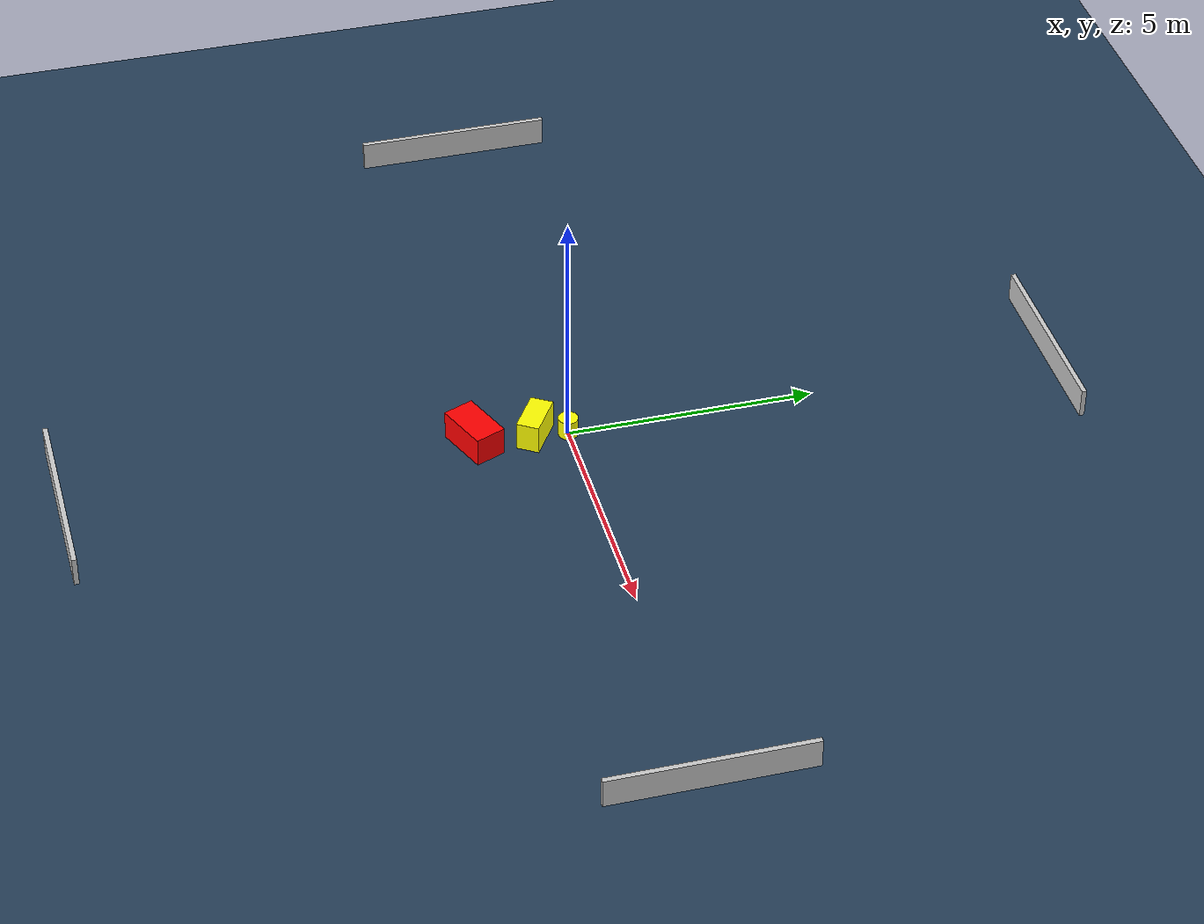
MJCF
<?xml version="1.0" ?>
<mujoco model="generated_environment">
  <option timestep="0.01" integrator="RK4" cone="elliptic"/>
  <default>
    <geom density="1"/>
  </default>
  <asset>
    <texture builtin="gradient" height="3072" name="skybox" rgb1="0.3 0.5 0.7" rgb2="0 0 0" type="skybox" width="512"/>
    <texture builtin="checker" height="300" name="groundplane" rgb1="0.2 0.3 0.4" rgb2="0.1 0.2 0.3" type="2d" width="300"/>
    <material name="groundplane" reflectance="0.2" texrepeat="5 5" texture="groundplane"/>
  </asset>
  <worldbody>
    <light dir="0 0 -1" directional="true" pos="0 0 1.5"/>
    <geom condim="3" friction="0.5 0.005 0.001" material="groundplane" name="floor" pos="0 0 0" size="0 0 0.05" type="plane"/>
    <body name="walls">
      <geom name="wall_1" condim="4" pos="-10.0 0.0 0.3" rgba="0.800000011920929 0.800000011920929 0.800000011920929 1.0" size="0.05 2.0 0.3" type="box"/>
      <geom name="wall_2" condim="4" pos="10.0 0.0 0.3" rgba="0.800000011920929 0.800000011920929 0.800000011920929 1.0" size="0.05 2.0 0.3" type="box"/>
      <geom name="wall_3" condim="4" pos="0.0 -10.0 0.3" rgba="0.800000011920929 0.800000011920929 0.800000011920929 1.0" size="2.0 0.05 0.3" type="box"/>
      <geom name="wall_4" condim="4" pos="0.0 10.0 0.3" rgba="0.800000011920929 0.800000011920929 0.800000011920929 1.0" size="2.0 0.05 0.3" type="box"/>
    </body>
    <body name="robot">
      <joint name="joint_x" type="slide" pos="0 0 0" axis="1 0 0"/>
      <joint name="joint_y" type="slide" pos="0 0 0" axis="0 1 0"/>
      <geom name="robot" type="cylinder" pos="0.0 0.0 0.2" size="0.2 0.2 0.0" mass="5.0" friction="1.0 0.005 0.0001" condim="4" rgba="1.0 1.0 0.0 1.0"/>
    </body>
    <body name="obstacle_1_movable">
      <geom name="obstacle_1_movable" condim="4" pos="-0.06774730413470913 -0.655702422458222 0.3" euler="0 0 327.24831225919365" friction="0.0 0.005 0.001" rgba="1.0 1.0 0.0 1.0" size="0.443577261205847 0.23051833826725956 0.3" type="box" mass="0.1"/>
      <joint type="free"/>
    </body>
    <body name="obstacle_2_static">
      <geom name="obstacle_2_static" condim="4" pos="-0.12782485569653 -1.8586703632210224 0.3" euler="0 0 292.3592392655591" friction="0.0 0.005 0.001" rgba="1.0 0.0 0.0 1.0" size="0.3216497560398232 0.5501179335002586 0.3" type="box"/>
    </body>
  </worldbody>
  <actuator>
    <motor name="actuator_x" joint="joint_x" gear="1" ctrlrange="-1 1"/>
    <motor name="actuator_y" joint="joint_y" gear="1" ctrlrange="-1 1"/>
  </actuator>
</mujoco>
